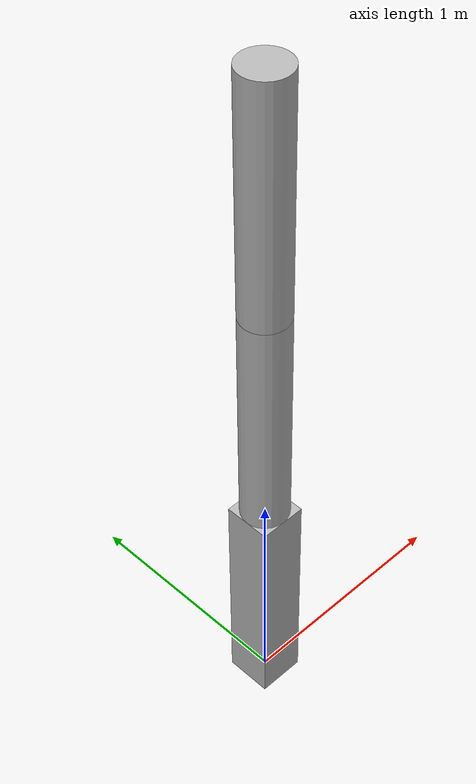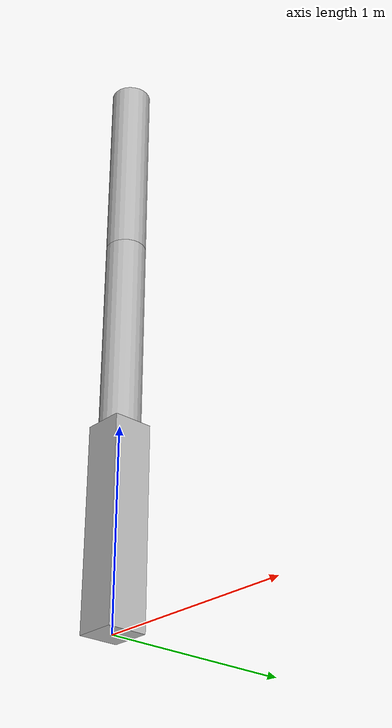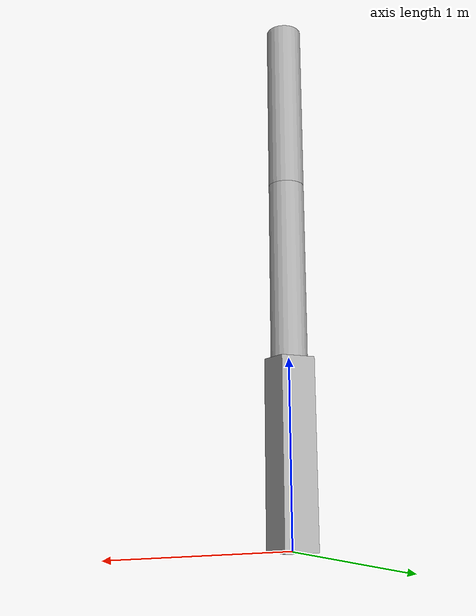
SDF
<?xml version="1.0" ?>
<sdf version="1.6">
  <model name="double_pendulum">
    <link name="base">
      <visual name="visual">
        <pose frame="base">0 0 0.5 0 0 0</pose>
        <geometry>
          <box>
            <size>0.2 0.2 1</size>
          </box>
        </geometry>
      </visual>
      <collision name="collision">
        <pose frame="base">0 0 0.5 0 0 0</pose>
        <geometry>
          <box>
            <size>0.2 0.2 1</size>
          </box>
        </geometry>
      </collision>
    </link>

    <!-- pin joint for upper link, at origin of upper link -->
    <joint name="joint1" type="revolute">
      <pose frame="base">0 0 1 0 0 0</pose>
      <parent>base</parent>
      <child>upper_link</child>
      <axis>
        <xyz>1.0 0 0</xyz>
      </axis>
    </joint>

    <!-- upper link, length 1, IC -90 degrees -->
    <link name="link1">
      <pose frame="joint1">0 0 0 0 0 0</pose>
      <visual name="visual">
        <pose frame="link1">0 0 0.5 0 0 0</pose>
        <geometry>
          <cylinder>
            <radius>0.1</radius>
            <length>1.0</length>
          </cylinder>
        </geometry>
      </visual>
      <collision name="collision">
        <pose frame="link1">0 0 .5 0 0 0</pose>
        <geometry>
          <cylinder>
            <radius>0.1</radius>
            <length>1.0</length>
          </cylinder>
        </geometry>
      </collision>
    </link>

    <!-- pin joint for lower link, at origin of child link -->
    <joint name="joint2" type="revolute">
      <pose frame="link1">0 0 1.0 0 0 0</pose>
      <parent>link1</parent>
      <child>link2</child>
      <axis>
        <xyz>1.0 0 0</xyz>
      </axis>
    </joint>

    <!-- lower link, length 1, IC ~-120 degrees more -->
    <link name="link2">
      <pose frame="joint2">0 0 0 0 0 0</pose>
      <visual name="visual">
        <pose frame="link2">0 0 0.5 0 0 0</pose>
        <geometry>
          <cylinder>
            <radius>0.1</radius>
            <length>1.0</length>
          </cylinder>
        </geometry>
      </visual>
      <collision name="collision">
        <pose frame="link2">0 0 0.5 0 0 0</pose>
        <geometry>
          <cylinder>
            <radius>0.1</radius>
            <length>1.0</length>
          </cylinder>
        </geometry>
      </collision>
    </link>
  </model>
</sdf>
